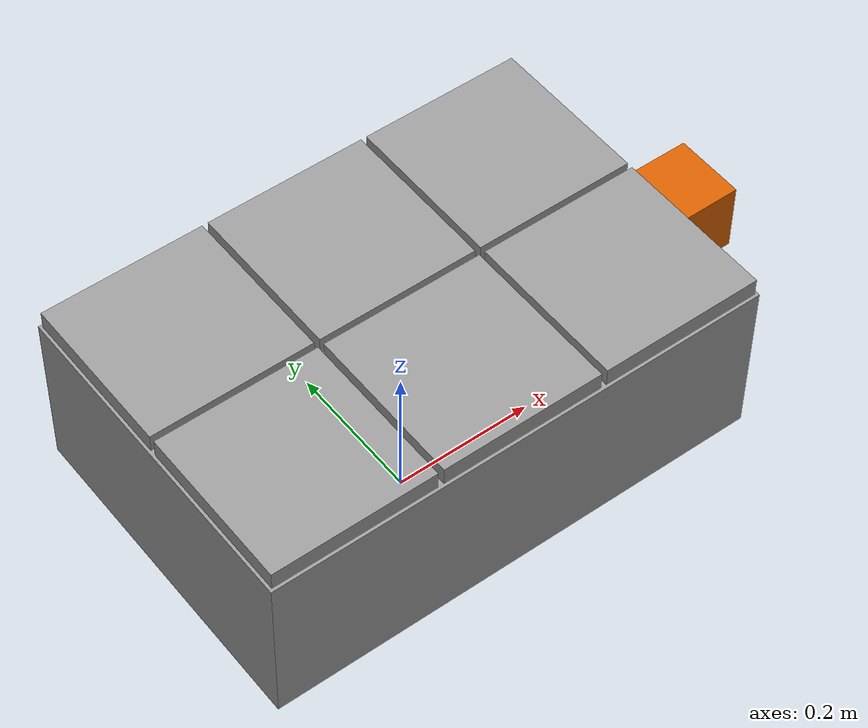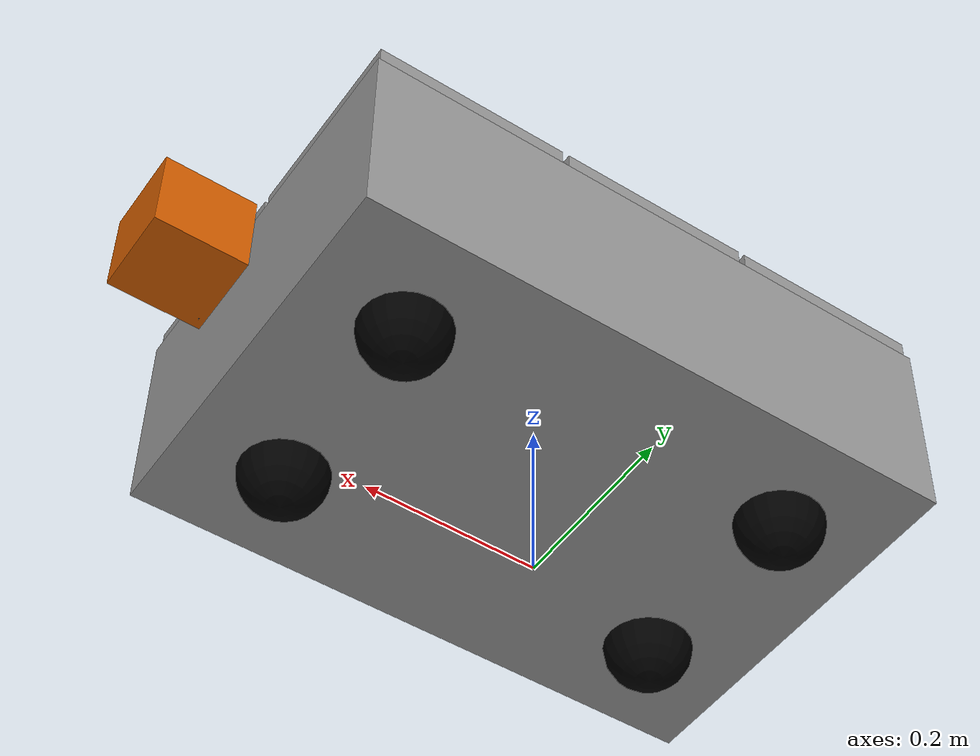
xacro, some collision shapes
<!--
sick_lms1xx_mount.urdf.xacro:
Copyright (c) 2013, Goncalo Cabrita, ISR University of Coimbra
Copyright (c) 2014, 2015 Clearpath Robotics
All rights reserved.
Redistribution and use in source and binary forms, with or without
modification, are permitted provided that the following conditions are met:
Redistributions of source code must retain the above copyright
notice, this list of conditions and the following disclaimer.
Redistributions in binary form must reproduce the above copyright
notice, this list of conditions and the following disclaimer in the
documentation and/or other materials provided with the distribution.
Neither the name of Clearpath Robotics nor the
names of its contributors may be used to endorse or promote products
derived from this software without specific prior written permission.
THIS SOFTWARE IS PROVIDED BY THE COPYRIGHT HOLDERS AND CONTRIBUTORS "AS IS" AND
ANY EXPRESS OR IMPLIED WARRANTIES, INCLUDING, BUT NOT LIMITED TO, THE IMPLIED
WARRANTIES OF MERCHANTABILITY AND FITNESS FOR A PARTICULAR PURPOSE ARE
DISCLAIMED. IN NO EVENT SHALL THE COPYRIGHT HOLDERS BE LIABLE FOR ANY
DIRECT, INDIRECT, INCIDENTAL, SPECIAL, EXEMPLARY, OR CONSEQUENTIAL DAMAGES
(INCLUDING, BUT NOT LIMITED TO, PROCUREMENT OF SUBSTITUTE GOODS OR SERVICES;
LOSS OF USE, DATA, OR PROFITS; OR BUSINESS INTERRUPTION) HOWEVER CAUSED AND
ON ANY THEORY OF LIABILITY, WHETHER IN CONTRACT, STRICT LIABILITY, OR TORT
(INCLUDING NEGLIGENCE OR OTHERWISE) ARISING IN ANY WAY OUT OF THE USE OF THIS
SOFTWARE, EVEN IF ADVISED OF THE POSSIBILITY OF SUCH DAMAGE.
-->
<?xml version="1.0"?>
<robot xmlns:xacro="http://ros.org/wiki/xacro" name="robile" >

    <xacro:property name="namespace" value="$(arg namespace)"/>
    <xacro:arg name="namespace" default="robile"/>

    <xacro:property name="base_length" value="0.699" />
    <xacro:property name="base_width" value="0.466" />
    <xacro:property name="base_thickness" value="0.233" />

    <xacro:property name="top_plate_length" value="0.225" />
    <xacro:property name="top_plate_width" value="0.225" />
    <xacro:property name="top_plate_thickness" value="0.025" />

    <xacro:property name="wheel_radius" value="0.05" />
    <xacro:property name="wheel_mass" value="1.0" />
    <xacro:property name="base_mass" value="8.0" />
    <xacro:property name="inertia_base" value="0.5" />
    <xacro:property name="inertia_wheels" value="0.001" />

    <material name="silver">
        <color rgba="0.6 0.6 0.6 1.0"/>
    </material>

    <material name="black">
        <color rgba="0.0 0.0 0.0 1.0"/>
    </material>

    <xacro:macro name="sphere_inertia" params="mass radius">
        <inertial>
            <mass value="${mass}" />
            <inertia ixx="${(mass*0.4)*(radius*radius)}"
                     iyy="${(mass*0.4)*(radius*radius)}"
                     iyz="0.0" ixy="0.0" ixz="0.0"
                     izz="${(mass*0.4)*(radius*radius)}" />
        </inertial>
    </xacro:macro>

    <xacro:macro name="robile_wheel" params="name parent *origin mass radius material_name">
        <joint name="${name}_joint" type="fixed">
            <xacro:insert_block name="origin" />
            <parent link="${parent}_link"/>
            <child link="${name}_link"/>
        </joint>
        <link name="${name}_link">
            <visual>
                <geometry>
                    <sphere radius="${radius}" />
                </geometry>
                <material name="${material_name}"/>
            </visual>
            <collision>
                <geometry>
                    <sphere radius="${radius}" />
                </geometry>
            </collision>
            <xacro:sphere_inertia mass="${mass}" radius="${radius}" />
        </link>
        <gazebo reference="${name}_link">
	    <gravity>0</gravity>
            <mu1>0.0</mu1>
            <mu2>0.0</mu2>
            <material>Gazebo/RustySteel</material>
        </gazebo>
    </xacro:macro>

    <xacro:macro name="top_plate" params="pos x y z color">
	<joint name="${pos}_joint" type="fixed">
	<origin xyz="${x} ${y} ${z + top_plate_thickness/2}" rpy="0 0 0"/>
	<parent link="base_body_link"/>
	<child link="${pos}_link"/>
	</joint>

	<link name="${pos}_link">
	<visual>
	    <geometry>
		<box size="${top_plate_length} ${top_plate_width} ${top_plate_thickness}"/>
	    </geometry>
	    <origin xyz="0.0 0.0 0.0" rpy="0.0 0.0 0.0" />
	    <material name="silver"/>
	</visual>
	<collision>
	    <geometry>
		<box size="${top_plate_length} ${top_plate_width} ${top_plate_thickness}"/>
	    </geometry>
	    <origin xyz="0.0 0.0 0.0" rpy="0.0 0.0 0.0" />
	</collision>
	</link>

	<gazebo reference="${pos}_link">
	<material>Gazebo/${color}</material>
	</gazebo>

    </xacro:macro>

    <link name="base_link" />

    <joint name="base_body_joint" type="fixed">
        <origin xyz="0.0 0.0 ${wheel_radius*2 + base_thickness*0.5}" rpy="0 0 0"/>
        <parent link="base_link"/>
        <child link="base_body_link"/>
    </joint>

    <link name="base_body_link">
        <visual>
            <geometry>
                <box size="${base_length} ${base_width} ${base_thickness}"/>
            </geometry>
            <origin xyz="0.0 0.0 0.0" rpy="0.0 0.0 0.0" />
            <material name="silver"/>
        </visual>
        <collision>
            <geometry>
                <box size="${base_length} ${base_width} ${base_thickness}"/>
            </geometry>
            <origin xyz="0.0 0.0 0.0" rpy="0.0 0.0 0.0" />
        </collision>
        <inertial>
          <mass value="${base_mass}"/>
          <inertia ixx="${inertia_base}" ixy="0.0" ixz="0.0" iyy="${inertia_base}" iyz="0.0" izz="${inertia_base}"/>
        </inertial>
    </link>

    <gazebo reference="base_body_link">
	<gravity>0</gravity>
        <material>Gazebo/GreyTransparent</material>
    </gazebo>

    <xacro:top_plate pos="fr" x="0.233" y="-0.1165" z="0.1165" color="Blue"/>
    <xacro:top_plate pos="fl" x="0.233" y="0.1165" z="0.1165" color="Blue"/>
    <xacro:top_plate pos="mr" x="0." y="-0.1165" z="0.1165" color="Yellow"/>
    <xacro:top_plate pos="ml" x="0." y="0.1165" z="0.1165" color="Yellow"/>
    <xacro:top_plate pos="br" x="-0.233" y="-0.1165" z="0.1165" color="Blue"/>
    <xacro:top_plate pos="bl" x="-0.233" y="0.1165" z="0.1165" color="Blue"/>

    <!-- WHEELS -->
    <xacro:robile_wheel name="left_rear_wheel" parent="base_body" mass="${wheel_mass}"
                       radius="${wheel_radius}" material_name="black">
	<origin xyz="0.233 0.1165 ${-base_thickness*0.5}" rpy="0 0 0"/>
    </xacro:robile_wheel>

    <xacro:robile_wheel name="right_rear_wheel" parent="base_body" mass="${wheel_mass}"
                       radius="${wheel_radius}" material_name="black">
	<origin xyz="-0.233 0.1165 ${-base_thickness*0.5}" rpy="0 0 0"/>
    </xacro:robile_wheel>

    <xacro:robile_wheel name="left_front_wheel" parent="base_body" mass="${wheel_mass}"
                       radius="${wheel_radius}" material_name="black">
	<origin xyz="-0.233 -0.1165 ${-base_thickness*0.5}" rpy="0 0 0"/>
    </xacro:robile_wheel>

    <xacro:robile_wheel name="right_front_wheel" parent="base_body" mass="${wheel_mass}"
                       radius="${wheel_radius}" material_name="black">
	<origin xyz="0.233 -0.1165 ${-base_thickness*0.5}" rpy="0 0 0"/>
    </xacro:robile_wheel>

    <!-- LASER -->
    <xacro:arg name="laser_enabled" default="true" />
    <xacro:include filename="$(find robile_sim)/description/xacro/sick_lms1xx_mount.urdf.xacro" />

    <xacro:if value="$(arg laser_enabled)">
       <xacro:sick_lms1xx_mount prefix="base"/>
       <xacro:sick_lms1xx frame="base_laser" topic="scan" robot_namespace="$(arg namespace)"/>

       <joint name="laser_mount_joint" type="fixed">
         <origin xyz="0.4 0.0 0.12" rpy="0 0 0" />
         <parent link="base_link" />
         <child link="base_laser_mount" />
       </joint>
    </xacro:if>

    <!-- HOLONOMIC DRIVE PLUGIN -->
    <gazebo>
        <plugin name="${namespace}_controller" filename="librobile_control_plugin.so">
            <commandTopic>${namespace}/cmd_vel</commandTopic>
            <odometryTopic>${namespace}/odom</odometryTopic>
            <odometryFrame>${namespace}/odom</odometryFrame>
            <odometryRate>20.0</odometryRate>
            <robotBaseFrame>${namespace}/base_link</robotBaseFrame>
        </plugin>
    </gazebo>

</robot>

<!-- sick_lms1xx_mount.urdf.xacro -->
<robot xmlns:xacro="http://www.ros.org/wiki/xacro">

  <xacro:include filename="$(find lms1xx)/urdf/sick_lms1xx.urdf.xacro" />

  <xacro:macro name="sick_lms1xx_mount" params="prefix">

    <!--sick_lms1xx frame="${prefix}_laser" topic="${topic}" /-->

    <link name="${prefix}_laser_mount">
      <visual>
        <origin xyz="0 0 0" rpy="0 0 1.570795" />
        <geometry>
          <!-- Origin of this mesh is the base of the bracket. -->
          <mesh filename="package://robile_sim/description/meshes/lms1xx_mount.dae" />
        </geometry>
      </visual>
      <collision>
        <origin xyz="0 0 0" rpy="0 0 1.570795" />
        <geometry>
          <!--box size=".1 .108 .117" /-->
	  <box size="0.001 0.001 0.001" />
        </geometry>
      </collision>
    </link>

    <joint name="${prefix}_laser_joint" type="fixed">
      <!-- This offset is from the base of the bracket to the LIDAR's focal point. -->
      <origin xyz="0.03 0.0 0.149" rpy="0 0 0" />
      <parent link="${prefix}_laser_mount" />
      <child link="${prefix}_laser" />
    </joint>

    <gazebo reference="${prefix}_laser_mount">
      <material>Gazebo/BlackTransparent</material>
    </gazebo>

  </xacro:macro>

</robot>

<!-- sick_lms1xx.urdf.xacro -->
<robot xmlns:xacro="http://www.ros.org/wiki/xacro">

  <xacro:macro name="sick_lms1xx" params="frame:=laser topic:=scan sample_size:=720 update_rate:=5
               min_angle:=-2.35619 max_angle:=2.35619 min_range:=0.1 max_range:=30.0 robot_namespace:=/" >
    <link name="${frame}">
      <inertial>
        <mass value="1.1" />
        <origin xyz="0 0 0" />
        <inertia ixx="${0.0833333 * 1.1 * (0.102*0.102 + 0.152*0.152)}" ixy="0.0" ixz="0.0"
          iyy="${0.0833333 * 1.1 * (0.105*0.105 + 0.152*0.152)}" iyz="0.0"
          izz="${0.0833333 * 1.1 * (0.105*0.105 + 0.102*0.102)}" />
      </inertial>
      <visual>
        <origin xyz="0 0 0" rpy="0 0 0" />
        <geometry>
          <!-- Origin of this mesh is the focal point of the LIDAR. -->
          <mesh filename="file://$(find lms1xx)/meshes/sick-lms1xx.dae" />
        </geometry>
      </visual>
      <collision>
        <origin xyz="0 0 -0.05" rpy="0 0 0" />
        <geometry>
          <box size="0.105 0.1 0.1" />
        </geometry>
      </collision>
    </link>

    <gazebo reference="${frame}">
      <turnGravityOff>true</turnGravityOff>
      <sensor type="ray" name="${frame}">
        <pose>0 0 0 0 0 0</pose>
        <visualize>false</visualize>
        <update_rate>${update_rate}</update_rate>
        <ray>
          <scan>
            <horizontal>
              <samples>${sample_size}</samples>
              <resolution>1</resolution>
              <min_angle>${min_angle}</min_angle>
              <max_angle>${max_angle}</max_angle>
            </horizontal>
          </scan>
          <range>
            <min>${min_range}</min>
            <max>${max_range}</max>
            <resolution>0.01</resolution>
          </range>
          <noise>
            <type>gaussian</type>
            <mean>0.0</mean>
            <stddev>0.001</stddev>
          </noise>
        </ray>
        <plugin name="${frame}_scan" filename="libgazebo_ros_ray_sensor.so">
          <ros>
            <remapping>~/out:=${topic}</remapping>
            <qos>
              <topic name="${topic}">
                  <publisher>
                      <reliability>best_effort</reliability>
                  </publisher>
              </topic>
            </qos>
          </ros>
          <frame_name>${frame}</frame_name>
          <robot_namespace>${robot_namespace}</robot_namespace>
          <output_type>sensor_msgs/LaserScan</output_type>
        </plugin>
      </sensor>
    </gazebo>

  </xacro:macro>
</robot>
